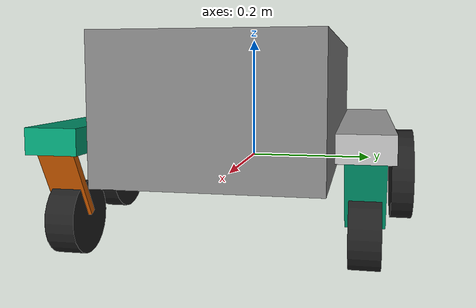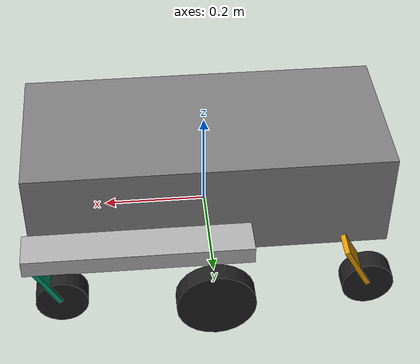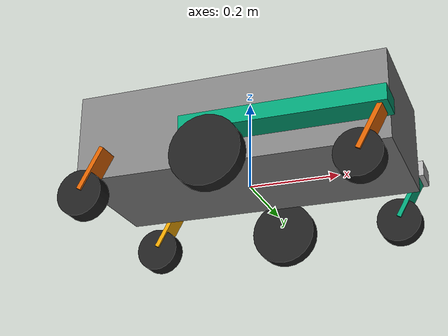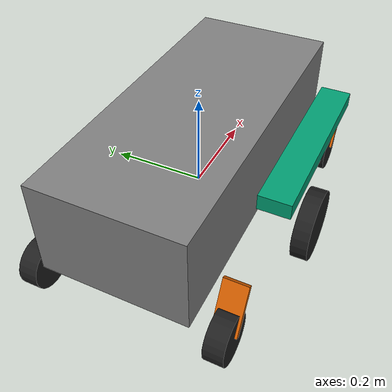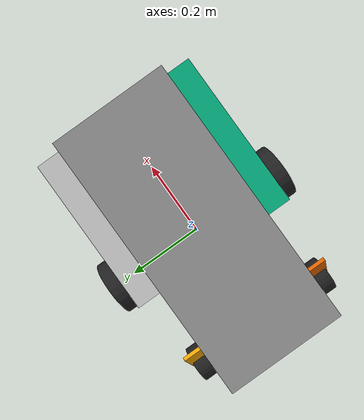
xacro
<?xml version="1.0"?>
<!--robot name="whill" xmlns:xacro="http://ros.org/wiki/xacro"-->

<robot name="agv_evaluation" xmlns:xacro="http://ros.org/wiki/xacro">
  <xacro:include filename="$(find agv_eval_description)/sample3/base/base.urdf.xacro"/>
  <!--xacro:include filename="$(find agv_eval_description)/sample3/wheel/wheel.urdf.xacro"/-->
  <xacro:include filename="$(find agv_eval_description)/sample3/caster/caster.urdf.xacro"/>
  <xacro:include filename="$(find agv_eval_description)/urdf/common.xacro"/>
  <xacro:include filename="$(find agv_eval_description)/sample3/front_unit/front_unit.urdf.xacro"/>

  <xacro:property name="wheel_tread" value="0.507"/>
  <xacro:property name="caster_tread" value="0.390"/>

  <!-- =============== Link & Joint =============== -->
  <!-- Base -->
  <link name="base_link"/>

  <xacro:base_v0 parent="base_link"/>

  <!-- front unit -->
  <xacro:front_unit_v0 prefix="right" parent="base_link">
    <origin xyz="0.14 -0.195 0.06" rpy="0 ${M_PI/2.0} 0"/>
    <origin xyz="0.086 -0.0585 -0.14"/>
  </xacro:front_unit_v0>
  <xacro:front_unit_v0 prefix="left" parent="base_link">
    <origin xyz="0.14 0.195 0.06" rpy="0 ${M_PI/2.0} 0"/>
    <origin xyz="0.086 0.0585 -0.14"/>
  </xacro:front_unit_v0>

  <!-- Rear Right Caster-->
  <xacro:caster_v0 prefix="rr" parent="base_link">
    <origin xyz="-0.25 -${caster_tread/2} 0.045" rpy="0 0 0"/>
  </xacro:caster_v0>

  <!-- Rear Left Caster-->
  <xacro:caster_v0 prefix="rl" parent="base_link">
    <origin xyz="-0.25 ${caster_tread/2} 0.045" rpy="0 0 0"/>
  </xacro:caster_v0>

  <!-- ===============  Transmission =============== -->
  <xacro:wheel_trans_v0 prefix="right"/>
  <xacro:wheel_trans_v0 prefix="left"/>
  <!-- =============== Gazebo =============== -->
  <gazebo>
    <plugin name="gazebo_ros_control" filename="libgazebo_ros_control.so">
      <robotNamespace>/agv_eval_description</robotNamespace>
      <robotSimType>gazebo_ros_control/DefaultRobotHWSim</robotSimType>
      <legacyModeNS>true</legacyModeNS>
    </plugin>
  </gazebo>

  <!-- Wheel -->
  <xacro:wheel_gazebo_v0 prefix="right"/>
  <xacro:wheel_gazebo_v0 prefix="left"/>

  <!-- Caster -->
  <xacro:caster_gazebo_v0 prefix="rr"/>
  <xacro:caster_gazebo_v0 prefix="rl"/>

</robot>

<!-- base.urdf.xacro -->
<robot xmlns:xacro="http://ros.org/wiki/xacro">
  <xacro:include filename="$(find agv_eval_description)/urdf/common.xacro"/>

  <xacro:macro name="base_v0" params="parent">
    <joint name="base_link_joint" type="fixed">
      <origin xyz="0 0 0"/>
      <parent link="${parent}"/>
      <child link="base_axle"/>
    </joint>

    <link name="base_axle">
      <visual>
    	<origin xyz="0 0 0.1" rpy="0 0 0" />
        <geometry>
          <box size="0.69 0.3 0.2"/>
        </geometry>
        <material name="">
          <color rgba="0.5 0.5 0.5 1" />
        </material>
      </visual>
      <collision>
      	<origin xyz="0 0 0.1" rpy="0 0 0" />
        <geometry>
          <box size="0.69 0.3 0.2"/>
        </geometry>
      </collision>
      <inertial>
        <origin xyz="0 0 0.05"/>
        <xacro:box_inertial mass="45" height="0.69" width="0.51" depth="0.10"/>
      </inertial>
    </link>
  </xacro:macro>

  <xacro:macro name="base_gazebo_v0">
    <gazebo reference="base_axle">
      <selfCollide>false</selfCollide>
      <mu1 value="0.05"/>
      <mu2 value="0.05"/>
    </gazebo>
  </xacro:macro>

</robot>

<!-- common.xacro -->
<robot xmlns:xacro="http://ros.org/wiki/xacro">
  <xacro:property name="M_PI" value="3.14159274"/>

  <xacro:macro name="cylinder_inertial" params="mass radius length">
    <mass value="${mass}"/>
    <inertia ixx="${((radius*radius)/4 + (length*length)/12)*mass}" ixy="0" ixz="0" iyy="${((radius*radius)/4 + (length*length)/12)*mass}" iyz="0" izz="${(mass*radius*radius)/2}"/>
  </xacro:macro>

  <xacro:macro name="box_inertial" params="mass height width depth">
    <mass value="${mass}"/>
    <inertia ixx="${(mass*(width*width+depth*depth))/12}" ixy="0" ixz="0" iyy="${(mass*(height*height+depth*depth))/12}" iyz="0" izz="${(mass*(height*height+width*width))/12}"/>
  </xacro:macro>
</robot>

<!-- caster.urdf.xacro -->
<robot xmlns:xacro="http://ros.org/wiki/xacro">

  <xacro:include filename="$(find agv_eval_description)/urdf/common.xacro"/>

  <xacro:property name="caster_radius" value="${0.10/2}"/>
  <xacro:property name="caster_length" value="0.04"/>
  <xacro:property name="caster_mass" value="0.5"/>

  <xacro:macro name="caster_v0" params="prefix parent *joint_origin">
    <joint name="${prefix}_swing_joing" type="continuous">
      <xacro:insert_block name="joint_origin"/>
      <parent link="${parent}"/>
      <child link="${prefix}_swing_link"/>
      <axis xyz="0 0 1"/>
    </joint>
    <link name="${prefix}_swing_link">
      <inertial>
        <origin xyz="0 0 0" rpy="0 0 0"/>
        <xacro:box_inertial mass="0.2" height="0.1" width="0.05" depth="0.05"/>
      </inertial>
    </link>

    <joint name="${prefix}_sus_joint" type="revolute">
      <origin xyz="0 0 0" rpy="0 0 0"/>
      <parent link="${prefix}_swing_link"/>
      <child link="${prefix}_sus_link"/>
      <axis xyz="0 1 0"/>
      <limit lower="0.0" upper="0.5" effort="0" velocity="0"/>
      <dynamics damping="0.7"/>
    </joint>
    <link name="${prefix}_sus_link">
      <visual>
        <origin xyz="-0.025 0 -0.05" rpy="0 0.5 0"/>
        <geometry>
          <box size="0.01 0.05 0.1"/>
        </geometry>
      </visual>
      <collision>
        <origin xyz="-0.025 0 -0.05" rpy="0 0.5 0"/>
        <geometry>
          <box size="0.01 0.05 0.1"/>
        </geometry>
      </collision>
      <inertial>
        <origin xyz="0 0 0" rpy="0 0 0"/>
        <xacro:box_inertial mass="0.2" height="0.1" width="0.05" depth="0.05"/>
      </inertial>
    </link>

    <gazebo reference="${prefix}_sus_joint">
      <implicitSpringDamper>true</implicitSpringDamper>
      <springStiffness>45</springStiffness>
      <springReference>0.0</springReference>
    </gazebo>

    <joint name="${prefix}_caster_joint" type="continuous">
      <origin xyz="-0.05 0 -0.1" rpy="0 0 0"/>
      <parent link="${prefix}_sus_link"/>
      <child link="${prefix}_caster_link"/>
      <axis xyz="0 -1 0"/>
      <dynamics damping="0.01"/>
    </joint>

    <link name="${prefix}_caster_link">
      <visual>
        <origin xyz="0 0 0" rpy="${-M_PI/2} 0 0"/>
        <geometry>
          <cylinder radius="${caster_radius}" length="${caster_length}"/>
        </geometry>
      </visual>
      <collision>
        <origin xyz="0 0 0" rpy="${-M_PI/2} 0 0"/>
        <geometry>
          <cylinder radius="${caster_radius}" length="${caster_length}"/>
        </geometry>
      </collision>
      <inertial>
        <origin xyz="0 0 0" rpy="${-M_PI/2} 0 0"/>
        <xacro:cylinder_inertial mass="${caster_mass}" radius="${caster_radius}" length="${caster_length}"/>
      </inertial>
    </link>
    <xacro:caster_gazebo_v0 prefix="${prefix}"/>

  </xacro:macro>

  <xacro:macro name="caster_gazebo_v0" params="prefix">
    <gazebo reference="${prefix}_caster_link">
      <selfCollide>false</selfCollide>
      <mu1 value="2.5" />
      <mu2 value="2.5" />
      <kp value="1e7" />
      <kd value="1" />
      <!--fdir1 value="1 0 0"/-->
      <material>Gazebo/Black</material>
    </gazebo>
  </xacro:macro>

</robot>

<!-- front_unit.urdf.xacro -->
<robot xmlns:xacro="http://ros.org/wiki/xacro">

  <xacro:include filename="$(find agv_eval_description)/sample3/wheel/wheel.urdf.xacro"/>
  <xacro:include filename="$(find agv_eval_description)/urdf/common.xacro"/>
  <xacro:include filename="$(find agv_eval_description)/sample3/caster/caster.urdf.xacro"/>

  <xacro:property name="caster_radius" value="${0.10/2}"/>
  <xacro:property name="caster_length" value="0.04"/>
  <xacro:property name="caster_mass" value="0.5"/>

  <xacro:macro name="front_unit_v0" params="prefix parent *joint_origin *wheel_origin">
    <joint name="${prefix}_arm_joint" type="revolute">
      <xacro:insert_block name="joint_origin"/>
      <parent link="${parent}"/>
      <child link="${prefix}_arm_link"/>
      <axis xyz="0 1 0"/>
      <limit lower="-0.5" upper="0.5" effort="0" velocity="0"/>
      <dynamics damping="0.7"/>
    </joint>
    <link name="${prefix}_arm_link">
      <visual>
        <origin xyz="0 0 0 " rpy="0 0 0"/>
        <geometry>
          <box size="0.035 0.07 0.43"/>
        </geometry>
      </visual>
      <collision>
        <origin xyz="0 0 0" rpy="0 0 0"/>
        <geometry>
          <box size="0.035 0.07 0.43"/>
        </geometry>
      </collision>
      <inertial>
        <origin xyz="0 0 0" rpy="0 0 0"/>
        <xacro:box_inertial mass="0.2" height="0.1" width="0.05" depth="0.05"/>
      </inertial>
    </link>

    <xacro:wheel_v0 prefix="${prefix}" parent="${prefix}_arm_link">
      <xacro:insert_block name="wheel_origin"/>
      <!--origin xyz="0.086 0 -0.14"/-->
      <axis xyz="0 1 0"/>
    </xacro:wheel_v0>

    <xacro:caster_v0 prefix="${prefix}" parent="${prefix}_arm_link">
      <origin xyz="0.01 0 0.2" rpy="0 -1.57 0"/>
    </xacro:caster_v0>

  </xacro:macro>

  <xacro:macro name="caster_gazebo_v0" params="prefix">
    <gazebo reference="${prefix}_caster_link">
      <selfCollide>false</selfCollide>
      <mu1 value="2.5" />
      <mu2 value="2.5" />
      <kp value="1e7" />
      <kd value="1" />
      <!--fdir1 value="1 0 0"/-->
      <material>Gazebo/Black</material>
    </gazebo>
  </xacro:macro>

</robot>

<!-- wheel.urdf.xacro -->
<robot xmlns:xacro="http://ros.org/wiki/xacro">

  <xacro:include filename="$(find agv_eval_description)/urdf/common.xacro"/>

  <xacro:property name="wheel_radius" value="${0.150/2}"/>
  <xacro:property name="wheel_length" value="0.035"/>
  <xacro:property name="wheel_mass" value="0.5"/>

  <xacro:macro name="wheel_v0" params="prefix parent *joint_origin *joint_axis">
    <joint name="${prefix}_wheel_joint" type="continuous">
      <xacro:insert_block name="joint_origin"/>
      <parent link="${parent}"/>
      <child link="${prefix}_wheel_link"/>
      <xacro:insert_block name="joint_axis"/>
      <dynamics damping="0.05"/>
    </joint>

    <link name="${prefix}_wheel_link">
      <visual>
        <origin xyz="0 0 0" rpy="${-M_PI/2} 0 0"/>
        <geometry>
          <cylinder radius="${wheel_radius}" length="${wheel_length}"/>
        </geometry>
      </visual>
      <collision>
        <origin xyz="0 0 0" rpy="${-M_PI/2} 0 0"/>
        <geometry>
          <cylinder radius="${wheel_radius}" length="${wheel_length}"/>
        </geometry>
      </collision>
      <inertial>
        <origin xyz="0 0 0" rpy="${-M_PI/2} 0 0"/>
        <xacro:cylinder_inertial mass="${wheel_mass}" radius="${wheel_radius}" length="${wheel_length}"/>
      </inertial>
    </link>
  </xacro:macro>

  <xacro:macro name="wheel_gazebo_v0" params="prefix">
    <gazebo reference="${prefix}_wheel_link">
      <selfCollide>false</selfCollide>
      <mu1 value="2.5" />
      <mu2 value="2.5" />
      <kp value="1e7" />
      <kd value="1" />
      <!--fdir1 value="1 0 0"/-->
      <material>Gazebo/Black</material>
    </gazebo>
  </xacro:macro>

  <xacro:macro name="wheel_trans_v0" params="prefix">
    <transmission name="${prefix}_wheel_trans">
        <type>transmission_interface/SimpleTransmission</type>
        <joint name="${prefix}_wheel_joint">
      <hardwareInterface>hardware_interface/VelocityJointInterface</hardwareInterface>
        </joint>
      <actuator name="${prefix}_wheel_motor">
      <hardwareInterface>hardware_interface/VelocityJointInterface</hardwareInterface>
      <mechanicalReduction>30</mechanicalReduction>
        </actuator>
    </transmission>
  </xacro:macro>

</robot>
